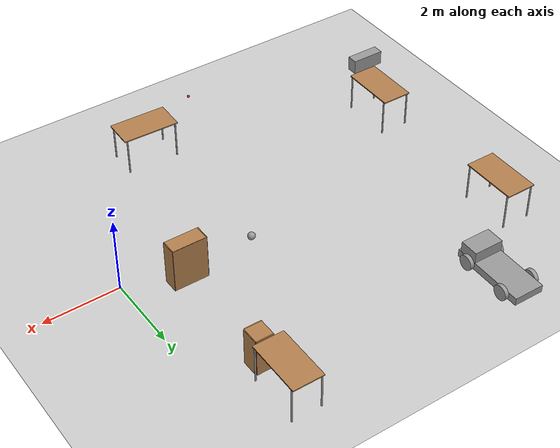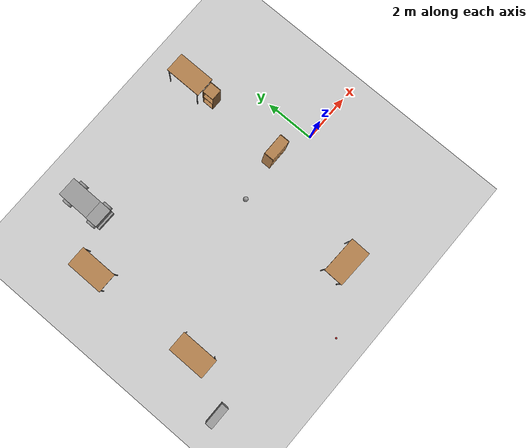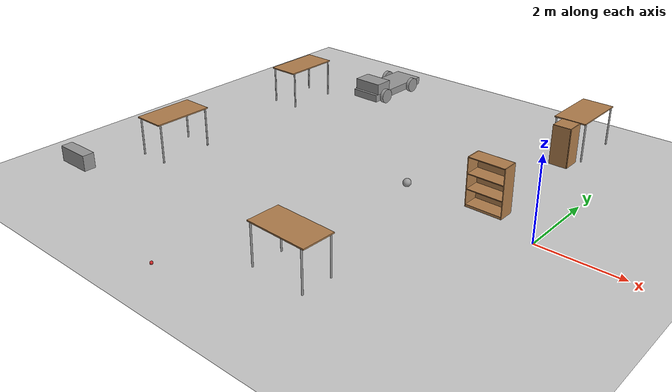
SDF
<sdf version="1.6">
 <world name="default">
  <model name="ground_plane">
   <static>1</static>
   <link name="link">
    <collision name="collision">
     <geometry><plane><normal>0 0 1</normal><size>100 100</size></plane></geometry>
     <surface><friction><ode><mu>100</mu><mu2>50</mu2></ode></friction></surface>
    </collision>
    <visual name="visual">
     <cast_shadows>0</cast_shadows>
     <geometry><plane><normal>0 0 1</normal><size>100 100</size></plane></geometry>
     <material>
      <script><uri>file://media/materials/scripts/gazebo.material</uri><name>Gazebo/Grey</name></script>
     </material>
    </visual>
   </link>
  </model>
  <model name="table">
   <static>1</static>
   <link name="link">
    <collision name="surface">
     <pose>0 0 1 0 -0 0</pose>
     <geometry><box><size>1.5 0.8 0.03</size></box></geometry>
     <surface><friction><ode><mu>0.6</mu><mu2>0.6</mu2></ode></friction></surface>
    </collision>
    <visual name="visual1">
     <pose>0 0 1 0 -0 0</pose>
     <geometry><box><size>1.5 0.8 0.03</size></box></geometry>
     <material>
      <script><uri>file://media/materials/scripts/gazebo.material</uri><name>Gazebo/Wood</name></script>
     </material>
    </visual>
    <collision name="front_left_leg">
     <pose>0.68 0.38 0.5 0 -0 0</pose>
     <geometry><cylinder><radius>0.02</radius><length>1</length></cylinder></geometry>
    </collision>
    <visual name="front_left_leg">
     <pose>0.68 0.38 0.5 0 -0 0</pose>
     <geometry><cylinder><radius>0.02</radius><length>1</length></cylinder></geometry>
     <material>
      <script><uri>file://media/materials/scripts/gazebo.material</uri><name>Gazebo/Grey</name></script>
     </material>
    </visual>
    <collision name="front_right_leg">
     <pose>0.68 -0.38 0.5 0 -0 0</pose>
     <geometry><cylinder><radius>0.02</radius><length>1</length></cylinder></geometry>
    </collision>
    <visual name="front_right_leg">
     <pose>0.68 -0.38 0.5 0 -0 0</pose>
     <geometry><cylinder><radius>0.02</radius><length>1</length></cylinder></geometry>
     <material>
      <script><uri>file://media/materials/scripts/gazebo.material</uri><name>Gazebo/Grey</name></script>
     </material>
    </visual>
    <collision name="back_right_leg">
     <pose>-0.68 -0.38 0.5 0 -0 0</pose>
     <geometry><cylinder><radius>0.02</radius><length>1</length></cylinder></geometry>
    </collision>
    <visual name="back_right_leg">
     <pose>-0.68 -0.38 0.5 0 -0 0</pose>
     <geometry><cylinder><radius>0.02</radius><length>1</length></cylinder></geometry>
     <material>
      <script><uri>file://media/materials/scripts/gazebo.material</uri><name>Gazebo/Grey</name></script>
     </material>
    </visual>
    <collision name="back_left_leg">
     <pose>-0.68 0.38 0.5 0 -0 0</pose>
     <geometry><cylinder><radius>0.02</radius><length>1</length></cylinder></geometry>
    </collision>
    <visual name="back_left_leg">
     <pose>-0.68 0.38 0.5 0 -0 0</pose>
     <geometry><cylinder><radius>0.02</radius><length>1</length></cylinder></geometry>
     <material>
      <script><uri>file://media/materials/scripts/gazebo.material</uri><name>Gazebo/Grey</name></script>
     </material>
    </visual>
   </link>
   <pose>-1.36641 4.79092 0 0 0 -1.57662</pose>
  </model>
  <model name="table_clone_clone">
   <static>1</static>
   <link name="link">
    <collision name="surface">
     <pose>0 0 1 0 -0 0</pose>
     <geometry><box><size>1.5 0.8 0.03</size></box></geometry>
     <surface><friction><ode><mu>0.6</mu><mu2>0.6</mu2></ode></friction></surface>
    </collision>
    <visual name="visual1">
     <pose>0 0 1 0 -0 0</pose>
     <geometry><box><size>1.5 0.8 0.03</size></box></geometry>
     <material>
      <script><uri>file://media/materials/scripts/gazebo.material</uri><name>Gazebo/Wood</name></script>
     </material>
    </visual>
    <collision name="front_left_leg">
     <pose>0.68 0.38 0.5 0 -0 0</pose>
     <geometry><cylinder><radius>0.02</radius><length>1</length></cylinder></geometry>
    </collision>
    <visual name="front_left_leg">
     <pose>0.68 0.38 0.5 0 -0 0</pose>
     <geometry><cylinder><radius>0.02</radius><length>1</length></cylinder></geometry>
     <material>
      <script><uri>file://media/materials/scripts/gazebo.material</uri><name>Gazebo/Grey</name></script>
     </material>
    </visual>
    <collision name="front_right_leg">
     <pose>0.68 -0.38 0.5 0 -0 0</pose>
     <geometry><cylinder><radius>0.02</radius><length>1</length></cylinder></geometry>
    </collision>
    <visual name="front_right_leg">
     <pose>0.68 -0.38 0.5 0 -0 0</pose>
     <geometry><cylinder><radius>0.02</radius><length>1</length></cylinder></geometry>
     <material>
      <script><uri>file://media/materials/scripts/gazebo.material</uri><name>Gazebo/Grey</name></script>
     </material>
    </visual>
    <collision name="back_right_leg">
     <pose>-0.68 -0.38 0.5 0 -0 0</pose>
     <geometry><cylinder><radius>0.02</radius><length>1</length></cylinder></geometry>
    </collision>
    <visual name="back_right_leg">
     <pose>-0.68 -0.38 0.5 0 -0 0</pose>
     <geometry><cylinder><radius>0.02</radius><length>1</length></cylinder></geometry>
     <material>
      <script><uri>file://media/materials/scripts/gazebo.material</uri><name>Gazebo/Grey</name></script>
     </material>
    </visual>
    <collision name="back_left_leg">
     <pose>-0.68 0.38 0.5 0 -0 0</pose>
     <geometry><cylinder><radius>0.02</radius><length>1</length></cylinder></geometry>
    </collision>
    <visual name="back_left_leg">
     <pose>-0.68 0.38 0.5 0 -0 0</pose>
     <geometry><cylinder><radius>0.02</radius><length>1</length></cylinder></geometry>
     <material>
      <script><uri>file://media/materials/scripts/gazebo.material</uri><name>Gazebo/Grey</name></script>
     </material>
    </visual>
   </link>
   <pose>-2.95006 -3.9138 0 0 -0 3.11071</pose>
  </model>
  <model name="bookshelf_clone">
   <static>1</static>
   <link name="link">
    <inertial><mass>1</mass></inertial>
    <collision name="back">
     <pose>0 0.005 0.6 0 -0 0</pose>
     <geometry><box><size>0.9 0.01 1.2</size></box></geometry>
    </collision>
    <visual name="visual1">
     <pose>0 0.005 0.6 0 -0 0</pose>
     <geometry><box><size>0.9 0.01 1.2</size></box></geometry>
     <material>
      <script><uri>file://media/materials/scripts/gazebo.material</uri><name>Gazebo/Wood</name></script>
     </material>
    </visual>
    <collision name="left_side">
     <pose>0.45 -0.195 0.6 0 -0 0</pose>
     <geometry><box><size>0.02 0.4 1.2</size></box></geometry>
    </collision>
    <visual name="visual2">
     <pose>0.45 -0.195 0.6 0 -0 0</pose>
     <geometry><box><size>0.02 0.4 1.2</size></box></geometry>
     <material>
      <script><uri>file://media/materials/scripts/gazebo.material</uri><name>Gazebo/Wood</name></script>
     </material>
    </visual>
    <collision name="right_side">
     <pose>-0.45 -0.195 0.6 0 -0 0</pose>
     <geometry><box><size>0.02 0.4 1.2</size></box></geometry>
    </collision>
    <visual name="visual3">
     <pose>-0.45 -0.195 0.6 0 -0 0</pose>
     <geometry><box><size>0.02 0.4 1.2</size></box></geometry>
     <material>
      <script><uri>file://media/materials/scripts/gazebo.material</uri><name>Gazebo/Wood</name></script>
     </material>
    </visual>
    <collision name="bottom">
     <pose>0 -0.195 0.03 0 -0 0</pose>
     <geometry><box><size>0.88 0.4 0.06</size></box></geometry>
    </collision>
    <visual name="visual4">
     <pose>0 -0.195 0.03 0 -0 0</pose>
     <geometry><box><size>0.88 0.4 0.06</size></box></geometry>
     <material>
      <script><uri>file://media/materials/scripts/gazebo.material</uri><name>Gazebo/Wood</name></script>
     </material>
    </visual>
    <collision name="top">
     <pose>0 -0.195 1.19 0 -0 0</pose>
     <geometry><box><size>0.88 0.4 0.02</size></box></geometry>
    </collision>
    <visual name="visual5">
     <pose>0 -0.195 1.19 0 -0 0</pose>
     <geometry><box><size>0.88 0.4 0.02</size></box></geometry>
     <material>
      <script><uri>file://media/materials/scripts/gazebo.material</uri><name>Gazebo/Wood</name></script>
     </material>
    </visual>
    <collision name="low_shelf">
     <pose>0 -0.195 0.43 0 -0 0</pose>
     <geometry><box><size>0.88 0.4 0.02</size></box></geometry>
    </collision>
    <visual name="visual6">
     <pose>0 -0.195 0.43 0 -0 0</pose>
     <geometry><box><size>0.88 0.4 0.02</size></box></geometry>
     <material>
      <script><uri>file://media/materials/scripts/gazebo.material</uri><name>Gazebo/Wood</name></script>
     </material>
    </visual>
    <collision name="high_shelf">
     <pose>0 -0.195 0.8 0 -0 0</pose>
     <geometry><box><size>0.88 0.4 0.02</size></box></geometry>
    </collision>
    <visual name="visual7">
     <pose>0 -0.195 0.8 0 -0 0</pose>
     <geometry><box><size>0.88 0.4 0.02</size></box></geometry>
     <material>
      <script><uri>file://media/materials/scripts/gazebo.material</uri><name>Gazebo/Wood</name></script>
     </material>
    </visual>
   </link>
   <pose>-1.43926 0.795295 0 0 -0 0</pose>
  </model>
  <model name="table_clone_0">
   <static>1</static>
   <link name="link">
    <collision name="surface">
     <pose>0 0 1 0 -0 0</pose>
     <geometry><box><size>1.5 0.8 0.03</size></box></geometry>
     <surface><friction><ode><mu>0.6</mu><mu2>0.6</mu2></ode></friction></surface>
    </collision>
    <visual name="visual1">
     <pose>0 0 1 0 -0 0</pose>
     <geometry><box><size>1.5 0.8 0.03</size></box></geometry>
     <material>
      <script><uri>file://media/materials/scripts/gazebo.material</uri><name>Gazebo/Wood</name></script>
     </material>
    </visual>
    <collision name="front_left_leg">
     <pose>0.68 0.38 0.5 0 -0 0</pose>
     <geometry><cylinder><radius>0.02</radius><length>1</length></cylinder></geometry>
    </collision>
    <visual name="front_left_leg">
     <pose>0.68 0.38 0.5 0 -0 0</pose>
     <geometry><cylinder><radius>0.02</radius><length>1</length></cylinder></geometry>
     <material>
      <script><uri>file://media/materials/scripts/gazebo.material</uri><name>Gazebo/Grey</name></script>
     </material>
    </visual>
    <collision name="front_right_leg">
     <pose>0.68 -0.38 0.5 0 -0 0</pose>
     <geometry><cylinder><radius>0.02</radius><length>1</length></cylinder></geometry>
    </collision>
    <visual name="front_right_leg">
     <pose>0.68 -0.38 0.5 0 -0 0</pose>
     <geometry><cylinder><radius>0.02</radius><length>1</length></cylinder></geometry>
     <material>
      <script><uri>file://media/materials/scripts/gazebo.material</uri><name>Gazebo/Grey</name></script>
     </material>
    </visual>
    <collision name="back_right_leg">
     <pose>-0.68 -0.38 0.5 0 -0 0</pose>
     <geometry><cylinder><radius>0.02</radius><length>1</length></cylinder></geometry>
    </collision>
    <visual name="back_right_leg">
     <pose>-0.68 -0.38 0.5 0 -0 0</pose>
     <geometry><cylinder><radius>0.02</radius><length>1</length></cylinder></geometry>
     <material>
      <script><uri>file://media/materials/scripts/gazebo.material</uri><name>Gazebo/Grey</name></script>
     </material>
    </visual>
    <collision name="back_left_leg">
     <pose>-0.68 0.38 0.5 0 -0 0</pose>
     <geometry><cylinder><radius>0.02</radius><length>1</length></cylinder></geometry>
    </collision>
    <visual name="back_left_leg">
     <pose>-0.68 0.38 0.5 0 -0 0</pose>
     <geometry><cylinder><radius>0.02</radius><length>1</length></cylinder></geometry>
     <material>
      <script><uri>file://media/materials/scripts/gazebo.material</uri><name>Gazebo/Grey</name></script>
     </material>
    </visual>
   </link>
   <pose>-9.02047 2.75404 0 0 0 -1.57662</pose>
  </model>
  <model name="table_clone_1">
   <static>1</static>
   <link name="link">
    <collision name="surface">
     <pose>0 0 1 0 -0 0</pose>
     <geometry><box><size>1.5 0.8 0.03</size></box></geometry>
     <surface><friction><ode><mu>0.6</mu><mu2>0.6</mu2></ode></friction></surface>
    </collision>
    <visual name="visual1">
     <pose>0 0 1 0 -0 0</pose>
     <geometry><box><size>1.5 0.8 0.03</size></box></geometry>
     <material>
      <script><uri>file://media/materials/scripts/gazebo.material</uri><name>Gazebo/Wood</name></script>
     </material>
    </visual>
    <collision name="front_left_leg">
     <pose>0.68 0.38 0.5 0 -0 0</pose>
     <geometry><cylinder><radius>0.02</radius><length>1</length></cylinder></geometry>
    </collision>
    <visual name="front_left_leg">
     <pose>0.68 0.38 0.5 0 -0 0</pose>
     <geometry><cylinder><radius>0.02</radius><length>1</length></cylinder></geometry>
     <material>
      <script><uri>file://media/materials/scripts/gazebo.material</uri><name>Gazebo/Grey</name></script>
     </material>
    </visual>
    <collision name="front_right_leg">
     <pose>0.68 -0.38 0.5 0 -0 0</pose>
     <geometry><cylinder><radius>0.02</radius><length>1</length></cylinder></geometry>
    </collision>
    <visual name="front_right_leg">
     <pose>0.68 -0.38 0.5 0 -0 0</pose>
     <geometry><cylinder><radius>0.02</radius><length>1</length></cylinder></geometry>
     <material>
      <script><uri>file://media/materials/scripts/gazebo.material</uri><name>Gazebo/Grey</name></script>
     </material>
    </visual>
    <collision name="back_right_leg">
     <pose>-0.68 -0.38 0.5 0 -0 0</pose>
     <geometry><cylinder><radius>0.02</radius><length>1</length></cylinder></geometry>
    </collision>
    <visual name="back_right_leg">
     <pose>-0.68 -0.38 0.5 0 -0 0</pose>
     <geometry><cylinder><radius>0.02</radius><length>1</length></cylinder></geometry>
     <material>
      <script><uri>file://media/materials/scripts/gazebo.material</uri><name>Gazebo/Grey</name></script>
     </material>
    </visual>
    <collision name="back_left_leg">
     <pose>-0.68 0.38 0.5 0 -0 0</pose>
     <geometry><cylinder><radius>0.02</radius><length>1</length></cylinder></geometry>
    </collision>
    <visual name="back_left_leg">
     <pose>-0.68 0.38 0.5 0 -0 0</pose>
     <geometry><cylinder><radius>0.02</radius><length>1</length></cylinder></geometry>
     <material>
      <script><uri>file://media/materials/scripts/gazebo.material</uri><name>Gazebo/Grey</name></script>
     </material>
    </visual>
   </link>
   <pose>-8.93091 -1.89535 0 0 0 -1.57662</pose>
  </model>
  <model name="miniTruck_0">
   <link name="link_0">
    <pose>0.132505 7.5e-05 0.142204 0 -0 0</pose>
    <inertial>
     <mass>1.05911</mass>
     <inertia>
      <ixx>0.187261</ixx>
      <ixy>0</ixy>
      <ixz>0</ixz>
      <iyy>0.176519</iyy>
      <iyz>0</iyz>
      <izz>0.187261</izz>
     </inertia>
    </inertial>
    <visual name="visual">
     <pose>0 0 -0.3 0 -0 0</pose>
     <geometry><box><size>2 0.8 0.2</size></box></geometry>
     <material>
      <lighting>1</lighting>
      <script><uri>file://media/materials/scripts/gazebo.material</uri><name>Gazebo/Grey</name></script>
      <shader type="pixel"><normal_map>__default__</normal_map></shader>
      <ambient>0.3 0.3 0.3 1</ambient>
      <diffuse>0.7 0.7 0.7 1</diffuse>
      <specular>0.01 0.01 0.01 1</specular>
      <emissive>0 0 0 1</emissive>
     </material>
    </visual>
    <collision name="collision">
     <pose>0 0 -0.3 0 -0 0</pose>
     <geometry><box><size>2 0.8 0.2</size></box></geometry>
     <surface>
      <friction>
       <ode><mu>1</mu><mu2>1</mu2><fdir1>0 0 0</fdir1><slip1>0</slip1><slip2>0</slip2></ode>
       <torsional>
        <coefficient>1</coefficient>
        <patch_radius>0</patch_radius>
        <surface_radius>0</surface_radius>
        <use_patch_radius>1</use_patch_radius>
        <ode><slip>0</slip></ode>
       </torsional>
      </friction>
      <bounce><restitution_coefficient>0</restitution_coefficient><threshold>1e+06</threshold></bounce>
      <contact>
       <collide_without_contact>0</collide_without_contact>
       <collide_without_contact_bitmask>1</collide_without_contact_bitmask>
       <collide_bitmask>1</collide_bitmask>
       <ode>
        <soft_cfm>0</soft_cfm>
        <soft_erp>0.2</soft_erp>
        <kp>1e+13</kp>
        <kd>1</kd>
        <max_vel>0.01</max_vel>
        <min_depth>0</min_depth>
       </ode>
       <bullet>
        <split_impulse>1</split_impulse>
        <split_impulse_penetration_threshold>-0.01</split_impulse_penetration_threshold>
        <soft_cfm>0</soft_cfm>
        <soft_erp>0.2</soft_erp>
        <kp>1e+13</kp>
        <kd>1</kd>
       </bullet>
      </contact>
     </surface>
    </collision>
   </link>
   <link name="link_1_clone">
    <pose>0.69925 -0.450265 -0.057531 -1.56965 0 0</pose>
    <inertial>
     <mass>1</mass>
     <inertia><ixx>0.145833</ixx><ixy>0</ixy><ixz>0</ixz><iyy>0.145833</iyy><iyz>0</iyz><izz>0.125</izz></inertia>
    </inertial>
    <visual name="visual">
     <pose>0 0.1 0 0 -0 0</pose>
     <geometry><cylinder><radius>0.2</radius><length>0.1</length></cylinder></geometry>
     <material>
      <lighting>1</lighting>
      <script><uri>file://media/materials/scripts/gazebo.material</uri><name>Gazebo/Grey</name></script>
      <shader type="pixel"><normal_map>__default__</normal_map></shader>
      <ambient>0.3 0.3 0.3 1</ambient>
      <diffuse>0.7 0.7 0.7 1</diffuse>
      <specular>0.01 0.01 0.01 1</specular>
      <emissive>0 0 0 1</emissive>
     </material>
    </visual>
    <collision name="collision">
     <pose>0 0.1 0 0 -0 0</pose>
     <geometry><cylinder><radius>0.2</radius><length>0.1</length></cylinder></geometry>
     <surface>
      <friction>
       <ode><mu>1</mu><mu2>1</mu2><fdir1>0 0 0</fdir1><slip1>0</slip1><slip2>0</slip2></ode>
       <torsional>
        <coefficient>1</coefficient>
        <patch_radius>0</patch_radius>
        <surface_radius>0</surface_radius>
        <use_patch_radius>1</use_patch_radius>
        <ode><slip>0</slip></ode>
       </torsional>
      </friction>
      <bounce><restitution_coefficient>0</restitution_coefficient><threshold>1e+06</threshold></bounce>
      <contact>
       <collide_without_contact>0</collide_without_contact>
       <collide_without_contact_bitmask>1</collide_without_contact_bitmask>
       <collide_bitmask>1</collide_bitmask>
       <ode>
        <soft_cfm>0</soft_cfm>
        <soft_erp>0.2</soft_erp>
        <kp>1e+13</kp>
        <kd>1</kd>
        <max_vel>0.01</max_vel>
        <min_depth>0</min_depth>
       </ode>
       <bullet>
        <split_impulse>1</split_impulse>
        <split_impulse_penetration_threshold>-0.01</split_impulse_penetration_threshold>
        <soft_cfm>0</soft_cfm>
        <soft_erp>0.2</soft_erp>
        <kp>1e+13</kp>
        <kd>1</kd>
       </bullet>
      </contact>
     </surface>
    </collision>
   </link>
   <link name="link_1_clone_clone">
    <pose>-0.497225 0.45019 -0.057531 -1.56965 0 0</pose>
    <inertial>
     <mass>1</mass>
     <inertia><ixx>0.145833</ixx><ixy>0</ixy><ixz>0</ixz><iyy>0.145833</iyy><iyz>0</iyz><izz>0.125</izz></inertia>
    </inertial>
    <visual name="visual">
     <pose>0 0.1 0 0 -0 0</pose>
     <geometry><cylinder><radius>0.2</radius><length>0.1</length></cylinder></geometry>
     <material>
      <lighting>1</lighting>
      <script><uri>file://media/materials/scripts/gazebo.material</uri><name>Gazebo/Grey</name></script>
      <shader type="pixel"><normal_map>__default__</normal_map></shader>
      <ambient>0.3 0.3 0.3 1</ambient>
      <diffuse>0.7 0.7 0.7 1</diffuse>
      <specular>0.01 0.01 0.01 1</specular>
      <emissive>0 0 0 1</emissive>
     </material>
    </visual>
    <collision name="collision">
     <pose>0 0.1 0 0 -0 0</pose>
     <geometry><cylinder><radius>0.2</radius><length>0.1</length></cylinder></geometry>
     <surface>
      <friction>
       <ode><mu>1</mu><mu2>1</mu2><fdir1>0 0 0</fdir1><slip1>0</slip1><slip2>0</slip2></ode>
       <torsional>
        <coefficient>1</coefficient>
        <patch_radius>0</patch_radius>
        <surface_radius>0</surface_radius>
        <use_patch_radius>1</use_patch_radius>
        <ode><slip>0</slip></ode>
       </torsional>
      </friction>
      <bounce><restitution_coefficient>0</restitution_coefficient><threshold>1e+06</threshold></bounce>
      <contact>
       <collide_without_contact>0</collide_without_contact>
       <collide_without_contact_bitmask>1</collide_without_contact_bitmask>
       <collide_bitmask>1</collide_bitmask>
       <ode>
        <soft_cfm>0</soft_cfm>
        <soft_erp>0.2</soft_erp>
        <kp>1e+13</kp>
        <kd>1</kd>
        <max_vel>0.01</max_vel>
        <min_depth>0</min_depth>
       </ode>
       <bullet>
        <split_impulse>1</split_impulse>
        <split_impulse_penetration_threshold>-0.01</split_impulse_penetration_threshold>
        <soft_cfm>0</soft_cfm>
        <soft_erp>0.2</soft_erp>
        <kp>1e+13</kp>
        <kd>1</kd>
       </bullet>
      </contact>
     </surface>
    </collision>
   </link>
   <link name="link_1_clone_clone_0">
    <pose>0.69925 0.45019 -0.057531 -1.56965 0 0</pose>
    <inertial>
     <mass>1</mass>
     <inertia><ixx>0.145833</ixx><ixy>0</ixy><ixz>0</ixz><iyy>0.145833</iyy><iyz>0</iyz><izz>0.125</izz></inertia>
    </inertial>
    <visual name="visual">
     <pose>0 0.1 0 0 -0 0</pose>
     <geometry><cylinder><radius>0.2</radius><length>0.1</length></cylinder></geometry>
     <material>
      <lighting>1</lighting>
      <script><uri>file://media/materials/scripts/gazebo.material</uri><name>Gazebo/Grey</name></script>
      <shader type="pixel"><normal_map>__default__</normal_map></shader>
      <ambient>0.3 0.3 0.3 1</ambient>
      <diffuse>0.7 0.7 0.7 1</diffuse>
      <specular>0.01 0.01 0.01 1</specular>
      <emissive>0 0 0 1</emissive>
     </material>
    </visual>
    <collision name="collision">
     <pose>0 0.1 0 0 -0 0</pose>
     <geometry><cylinder><radius>0.2</radius><length>0.1</length></cylinder></geometry>
     <surface>
      <friction>
       <ode><mu>1</mu><mu2>1</mu2><fdir1>0 0 0</fdir1><slip1>0</slip1><slip2>0</slip2></ode>
       <torsional>
        <coefficient>1</coefficient>
        <patch_radius>0</patch_radius>
        <surface_radius>0</surface_radius>
        <use_patch_radius>1</use_patch_radius>
        <ode><slip>0</slip></ode>
       </torsional>
      </friction>
      <bounce><restitution_coefficient>0</restitution_coefficient><threshold>1e+06</threshold></bounce>
      <contact>
       <collide_without_contact>0</collide_without_contact>
       <collide_without_contact_bitmask>1</collide_without_contact_bitmask>
       <collide_bitmask>1</collide_bitmask>
       <ode>
        <soft_cfm>0</soft_cfm>
        <soft_erp>0.2</soft_erp>
        <kp>1e+13</kp>
        <kd>1</kd>
        <max_vel>0.01</max_vel>
        <min_depth>0</min_depth>
       </ode>
       <bullet>
        <split_impulse>1</split_impulse>
        <split_impulse_penetration_threshold>-0.01</split_impulse_penetration_threshold>
        <soft_cfm>0</soft_cfm>
        <soft_erp>0.2</soft_erp>
        <kp>1e+13</kp>
        <kd>1</kd>
       </bullet>
      </contact>
     </surface>
    </collision>
   </link>
   <link name="link_1_clone_clone_1">
    <pose>-0.497225 -0.450265 -0.057531 -1.56965 0 0</pose>
    <inertial>
     <mass>1</mass>
     <inertia><ixx>0.145833</ixx><ixy>0</ixy><ixz>0</ixz><iyy>0.145833</iyy><iyz>0</iyz><izz>0.125</izz></inertia>
    </inertial>
    <visual name="visual">
     <pose>0 0.1 0 0 -0 0</pose>
     <geometry><cylinder><radius>0.2</radius><length>0.1</length></cylinder></geometry>
     <material>
      <lighting>1</lighting>
      <script><uri>file://media/materials/scripts/gazebo.material</uri><name>Gazebo/Grey</name></script>
      <shader type="pixel"><normal_map>__default__</normal_map></shader>
      <ambient>0.3 0.3 0.3 1</ambient>
      <diffuse>0.7 0.7 0.7 1</diffuse>
      <specular>0.01 0.01 0.01 1</specular>
      <emissive>0 0 0 1</emissive>
     </material>
    </visual>
    <collision name="collision">
     <pose>0 0.1 0 0 -0 0</pose>
     <geometry><cylinder><radius>0.2</radius><length>0.1</length></cylinder></geometry>
     <surface>
      <friction>
       <ode><mu>1</mu><mu2>1</mu2><fdir1>0 0 0</fdir1><slip1>0</slip1><slip2>0</slip2></ode>
       <torsional>
        <coefficient>1</coefficient>
        <patch_radius>0</patch_radius>
        <surface_radius>0</surface_radius>
        <use_patch_radius>1</use_patch_radius>
        <ode><slip>0</slip></ode>
       </torsional>
      </friction>
      <bounce><restitution_coefficient>0</restitution_coefficient><threshold>1e+06</threshold></bounce>
      <contact>
       <collide_without_contact>0</collide_without_contact>
       <collide_without_contact_bitmask>1</collide_without_contact_bitmask>
       <collide_bitmask>1</collide_bitmask>
       <ode>
        <soft_cfm>0</soft_cfm>
        <soft_erp>0.2</soft_erp>
        <kp>1e+13</kp>
        <kd>1</kd>
        <max_vel>0.01</max_vel>
        <min_depth>0</min_depth>
       </ode>
       <bullet>
        <split_impulse>1</split_impulse>
        <split_impulse_penetration_threshold>-0.01</split_impulse_penetration_threshold>
        <soft_cfm>0</soft_cfm>
        <soft_erp>0.2</soft_erp>
        <kp>1e+13</kp>
        <kd>1</kd>
       </bullet>
      </contact>
     </surface>
    </collision>
   </link>
   <link name="link_2">
    <pose>-0.536555 7.5e-05 0.08792 0 -0 0</pose>
    <inertial>
     <mass>1</mass>
     <inertia>
      <ixx>0.166667</ixx>
      <ixy>0</ixy>
      <ixz>0</ixz>
      <iyy>0.166667</iyy>
      <iyz>0</iyz>
      <izz>0.166667</izz>
     </inertia>
    </inertial>
    <visual name="visual">
     <geometry><box><size>0.5 0.8 0.3</size></box></geometry>
     <material>
      <lighting>1</lighting>
      <script><uri>file://media/materials/scripts/gazebo.material</uri><name>Gazebo/Grey</name></script>
      <shader type="pixel"><normal_map>__default__</normal_map></shader>
      <ambient>0.3 0.3 0.3 1</ambient>
      <diffuse>0.7 0.7 0.7 1</diffuse>
      <specular>0.01 0.01 0.01 1</specular>
      <emissive>0 0 0 1</emissive>
     </material>
    </visual>
    <collision name="collision">
     <geometry><box><size>0.5 0.8 0.3</size></box></geometry>
     <surface>
      <friction>
       <ode><mu>1</mu><mu2>1</mu2><fdir1>0 0 0</fdir1><slip1>0</slip1><slip2>0</slip2></ode>
       <torsional>
        <coefficient>1</coefficient>
        <patch_radius>0</patch_radius>
        <surface_radius>0</surface_radius>
        <use_patch_radius>1</use_patch_radius>
        <ode><slip>0</slip></ode>
       </torsional>
      </friction>
      <bounce><restitution_coefficient>0</restitution_coefficient><threshold>1e+06</threshold></bounce>
      <contact>
       <collide_without_contact>0</collide_without_contact>
       <collide_without_contact_bitmask>1</collide_without_contact_bitmask>
       <collide_bitmask>1</collide_bitmask>
       <ode>
        <soft_cfm>0</soft_cfm>
        <soft_erp>0.2</soft_erp>
        <kp>1e+13</kp>
        <kd>1</kd>
        <max_vel>0.01</max_vel>
        <min_depth>0</min_depth>
       </ode>
       <bullet>
        <split_impulse>1</split_impulse>
        <split_impulse_penetration_threshold>-0.01</split_impulse_penetration_threshold>
        <soft_cfm>0</soft_cfm>
        <soft_erp>0.2</soft_erp>
        <kp>1e+13</kp>
        <kd>1</kd>
       </bullet>
      </contact>
     </surface>
    </collision>
   </link>
   <joint name="link_0_JOINT_0" type="revolute">
    <parent>link_0</parent>
    <child>link_1_clone</child>
    <axis>
     <xyz>1 0 0</xyz>
     <use_parent_model_frame>0</use_parent_model_frame>
     <limit>
      <lower>-1.79769e+308</lower>
      <upper>1.79769e+308</upper>
      <effort>-1</effort>
      <velocity>-1</velocity>
     </limit>
     <dynamics>
      <spring_reference>0</spring_reference>
      <spring_stiffness>0</spring_stiffness>
      <damping>0</damping>
      <friction>0</friction>
     </dynamics>
    </axis>
    <physics>
     <ode><limit><cfm>0</cfm><erp>0.2</erp></limit><suspension><cfm>0</cfm><erp>0.2</erp></suspension></ode>
    </physics>
   </joint>
   <joint name="link_0_JOINT_1" type="revolute">
    <parent>link_0</parent>
    <child>link_1_clone_clone_0</child>
    <axis>
     <xyz>1 0 0</xyz>
     <use_parent_model_frame>0</use_parent_model_frame>
     <limit>
      <lower>-1.79769e+308</lower>
      <upper>1.79769e+308</upper>
      <effort>-1</effort>
      <velocity>-1</velocity>
     </limit>
     <dynamics>
      <spring_reference>0</spring_reference>
      <spring_stiffness>0</spring_stiffness>
      <damping>0</damping>
      <friction>0</friction>
     </dynamics>
    </axis>
    <physics>
     <ode><limit><cfm>0</cfm><erp>0.2</erp></limit><suspension><cfm>0</cfm><erp>0.2</erp></suspension></ode>
    </physics>
   </joint>
   <joint name="link_0_JOINT_3" type="revolute">
    <parent>link_0</parent>
    <child>link_1_clone_clone</child>
    <axis>
     <xyz>1 0 0</xyz>
     <use_parent_model_frame>0</use_parent_model_frame>
     <limit>
      <lower>-1.79769e+308</lower>
      <upper>1.79769e+308</upper>
      <effort>-1</effort>
      <velocity>-1</velocity>
     </limit>
     <dynamics>
      <spring_reference>0</spring_reference>
      <spring_stiffness>0</spring_stiffness>
      <damping>0</damping>
     </dynamics>
    </axis>
    <physics>
     <ode><limit><cfm>0</cfm><erp>0.2</erp></limit><suspension><cfm>0</cfm><erp>0.2</erp></suspension></ode>
    </physics>
   </joint>
   <joint name="link_0_JOINT_6" type="revolute">
    <parent>link_0</parent>
    <child>link_1_clone_clone_1</child>
    <axis>
     <xyz>1 0 0</xyz>
     <use_parent_model_frame>0</use_parent_model_frame>
     <limit>
      <lower>-1.79769e+308</lower>
      <upper>1.79769e+308</upper>
      <effort>-1</effort>
      <velocity>-1</velocity>
     </limit>
     <dynamics>
      <spring_reference>0</spring_reference>
      <spring_stiffness>0</spring_stiffness>
      <damping>0</damping>
     </dynamics>
    </axis>
    <physics>
     <ode><limit><cfm>0</cfm><erp>0.2</erp></limit><suspension><cfm>0</cfm><erp>0.2</erp></suspension></ode>
    </physics>
   </joint>
   <joint name="link_0_JOINT_8" type="fixed">
    <parent>link_0</parent>
    <child>link_2</child>
    <physics>
     <ode><limit><cfm>0</cfm><erp>0.2</erp></limit><suspension><cfm>0</cfm><erp>0.2</erp></suspension></ode>
    </physics>
   </joint>
   <static>0</static>
   <pose>-7.39612 4.52879 0.357531 0 -0 1.56051</pose>
  </model>
  <model name="my_ball">
   <link name="link_0">
    <inertial>
     <mass>1</mass>
     <inertia><ixx>0.1</ixx><ixy>0</ixy><ixz>0</ixz><iyy>0.1</iyy><iyz>0</iyz><izz>0.1</izz></inertia>
    </inertial>
    <visual name="visual">
     <geometry><sphere><radius>0.1</radius></sphere></geometry>
     <material>
      <lighting>1</lighting>
      <script><uri>file://media/materials/scripts/gazebo.material</uri><name>Gazebo/Grey</name></script>
      <shader type="pixel"><normal_map>__default__</normal_map></shader>
      <ambient>1 1 1 1</ambient>
      <diffuse>1 1 1 1</diffuse>
      <specular>1 1 1 1</specular>
      <emissive>1 1 1 1</emissive>
     </material>
    </visual>
    <collision name="collision">
     <geometry><sphere><radius>0.1</radius></sphere></geometry>
     <surface>
      <friction>
       <ode><mu>1</mu><mu2>1</mu2><fdir1>0 0 0</fdir1><slip1>0</slip1><slip2>0</slip2></ode>
       <torsional>
        <coefficient>1</coefficient>
        <patch_radius>0</patch_radius>
        <surface_radius>0</surface_radius>
        <use_patch_radius>1</use_patch_radius>
        <ode><slip>0</slip></ode>
       </torsional>
      </friction>
      <bounce><restitution_coefficient>0</restitution_coefficient><threshold>1e+06</threshold></bounce>
      <contact>
       <collide_without_contact>0</collide_without_contact>
       <collide_without_contact_bitmask>1</collide_without_contact_bitmask>
       <collide_bitmask>1</collide_bitmask>
       <ode>
        <soft_cfm>0</soft_cfm>
        <soft_erp>0.2</soft_erp>
        <kp>1e+13</kp>
        <kd>1</kd>
        <max_vel>0.01</max_vel>
        <min_depth>0</min_depth>
       </ode>
       <bullet>
        <split_impulse>1</split_impulse>
        <split_impulse_penetration_threshold>-0.01</split_impulse_penetration_threshold>
        <soft_cfm>0</soft_cfm>
        <soft_erp>0.2</soft_erp>
        <kp>1e+13</kp>
        <kd>1</kd>
       </bullet>
      </contact>
     </surface>
    </collision>
   </link>
   <static>0</static>
   <pose>-3.40009 0.312231 0.1 0 -0 0</pose>
  </model>
  <model name="cabinet_0">
   <static>1</static>
   <link name="cabinet_bottom_plate">
    <inertial>
     <pose>0 0 -1 0 -0 0</pose>
     <inertia><ixx>2.05</ixx><ixy>0</ixy><ixz>0</ixz><iyy>2.05</iyy><iyz>0</iyz><izz>2.05</izz></inertia>
     <mass>25</mass>
    </inertial>
    <collision name="cabinet_bottom_plate_geom">
     <pose>0 0 0.01 0 -0 0</pose>
     <geometry><box><size>0.45 0.45 0.02</size></box></geometry>
    </collision>
    <visual name="cabinet_bottom_plate_geom_visual">
     <pose>0 0 0.01 0 -0 0</pose>
     <geometry><box><size>0.45 0.45 0.02</size></box></geometry>
     <material>
      <script><uri>file://media/materials/scripts/gazebo.material</uri><name>Gazebo/Wood</name></script>
     </material>
    </visual>
    <collision name="cabinet_bottom_plate_geom_cabinet_back_plate">
     <pose>0.235 0 0.51 0 -0 0</pose>
     <geometry><box><size>0.02 0.45 1.02</size></box></geometry>
    </collision>
    <visual name="cabinet_bottom_plate_geom_cabinet_back_plate_visual">
     <pose>0.235 0 0.51 0 -0 0</pose>
     <geometry><box><size>0.02 0.45 1.02</size></box></geometry>
     <material>
      <script><uri>file://media/materials/scripts/gazebo.material</uri><name>Gazebo/Wood</name></script>
     </material>
    </visual>
    <collision name="cabinet_bottom_plate_geom_cabinet_left_plate">
     <pose>0 0.235 0.51 0 -0 0</pose>
     <geometry><box><size>0.45 0.02 1.02</size></box></geometry>
    </collision>
    <visual name="cabinet_bottom_plate_geom_cabinet_left_plate_visual">
     <pose>0 0.235 0.51 0 -0 0</pose>
     <geometry><box><size>0.45 0.02 1.02</size></box></geometry>
     <material>
      <script><uri>file://media/materials/scripts/gazebo.material</uri><name>Gazebo/Wood</name></script>
     </material>
    </visual>
    <collision name="cabinet_bottom_plate_geom_cabinet_middle_plate">
     <pose>0 0 0.51 0 -0 0</pose>
     <geometry><box><size>0.45 0.45 0.02</size></box></geometry>
    </collision>
    <visual name="cabinet_bottom_plate_geom_cabinet_middle_plate_visual">
     <pose>0 0 0.51 0 -0 0</pose>
     <geometry><box><size>0.45 0.45 0.02</size></box></geometry>
     <material>
      <script><uri>file://media/materials/scripts/gazebo.material</uri><name>Gazebo/Wood</name></script>
     </material>
    </visual>
    <collision name="cabinet_bottom_plate_geom_cabinet_right_plate">
     <pose>0 -0.235 0.51 0 -0 0</pose>
     <geometry><box><size>0.45 0.02 1.02</size></box></geometry>
    </collision>
    <visual name="cabinet_bottom_plate_geom_cabinet_right_plate_visual">
     <pose>0 -0.235 0.51 0 -0 0</pose>
     <geometry><box><size>0.45 0.02 1.02</size></box></geometry>
     <material>
      <script><uri>file://media/materials/scripts/gazebo.material</uri><name>Gazebo/Wood</name></script>
     </material>
    </visual>
    <collision name="cabinet_bottom_plate_geom_cabinet_top_plate">
     <pose>0 0 1.01 0 -0 0</pose>
     <geometry><box><size>0.45 0.45 0.02</size></box></geometry>
    </collision>
    <visual name="cabinet_bottom_plate_geom_cabinet_top_plate_visual">
     <pose>0 0 1.01 0 -0 0</pose>
     <geometry><box><size>0.45 0.45 0.02</size></box></geometry>
     <material>
      <script><uri>file://media/materials/scripts/gazebo.material</uri><name>Gazebo/Wood</name></script>
     </material>
    </visual>
   </link>
   <pose>-1.31861 3.76839 0 0 -0 0</pose>
  </model>
  <model name="cricket_ball">
   <link name="link">
    <pose>0 0 0.0375 0 -0 0</pose>
    <inertial>
     <mass>0.1467</mass>
     <inertia>
      <ixx>8.25187e-05</ixx>
      <ixy>0</ixy>
      <ixz>0</ixz>
      <iyy>8.25187e-05</iyy>
      <iyz>0</iyz>
      <izz>8.25187e-05</izz>
     </inertia>
    </inertial>
    <collision name="collision">
     <geometry><sphere><radius>0.0375</radius></sphere></geometry>
     <surface>
      <contact>
       <poissons_ratio>0.347</poissons_ratio>
       <elastic_modulus>8.8e+09</elastic_modulus>
       <ode><kp>100000</kp><kd>100</kd><max_vel>100</max_vel><min_depth>0.001</min_depth></ode>
      </contact>
      <friction>
       <torsional>
        <coefficient>1</coefficient>
        <use_patch_radius>0</use_patch_radius>
        <surface_radius>0.01</surface_radius>
       </torsional>
      </friction>
     </surface>
    </collision>
    <visual name="visual">
     <geometry><sphere><radius>0.0375</radius></sphere></geometry>
     <material>
      <script><uri>file://media/materials/scripts/gazebo.material</uri><name>Gazebo/Red</name></script>
     </material>
    </visual>
    <velocity_decay><linear>0</linear><angular>0.005</angular></velocity_decay>
   </link>
   <pose>-5.16547 -5.49851 -0.001014 0 -0 0</pose>
  </model>
  <model name="Box_36x15W">
   <link name="Wall">
    <pose>0 0 0.1985 0 -0 0</pose>
    <inertial>
     <mass>5</mass>
     <inertia><ixx>0.1022</ixx><iyy>0.4107</iyy><izz>0.3815</izz><ixy>0</ixy><ixz>0</ixz><iyz>0</iyz></inertia>
    </inertial>
    <collision name="Wall_Collision"><geometry><box><size>0.91 0.296 0.397</size></box></geometry></collision>
    <visual name="Wall_Visual">
     <geometry><box><size>0.91 0.296 0.397</size></box></geometry>
     <material>
      <script><uri>file://media/materials/scripts/gazebo.material</uri><name>Gazebo/Grey</name></script>
      <ambient>1 1 1 1</ambient>
     </material>
    </visual>
   </link>
   <static>1</static>
   <pose>-10.0484 -3.95449 0 0 -0 0</pose>
  </model>
 </world>
</sdf>
